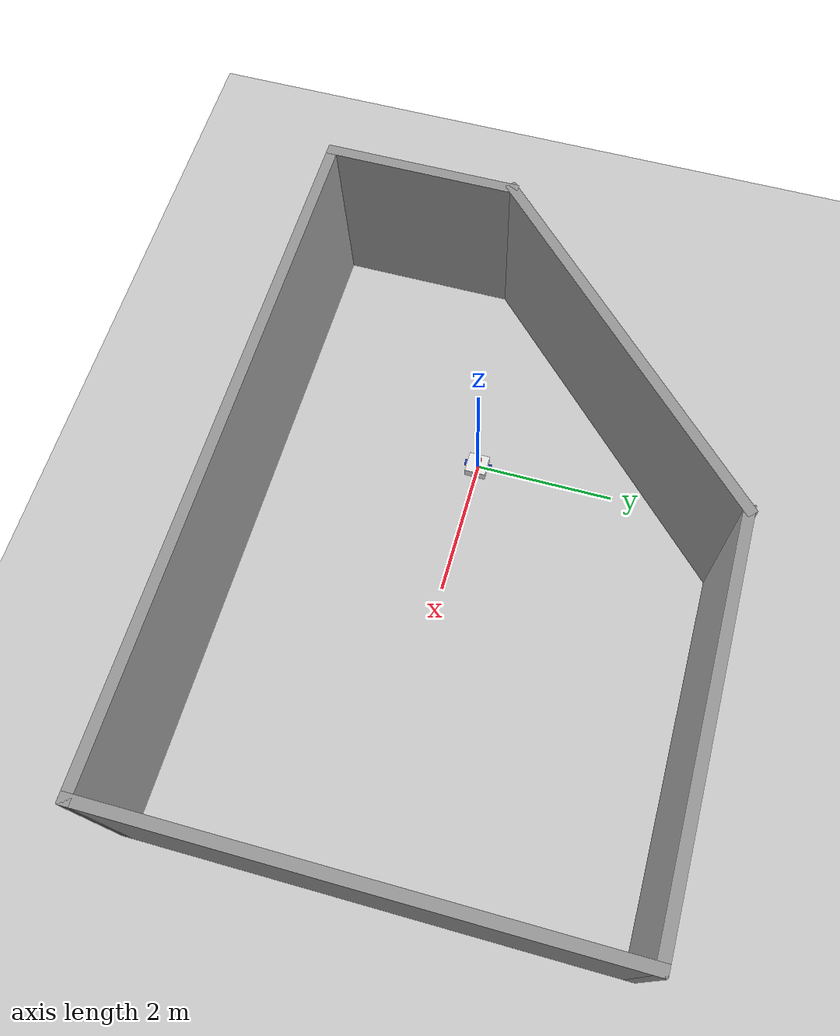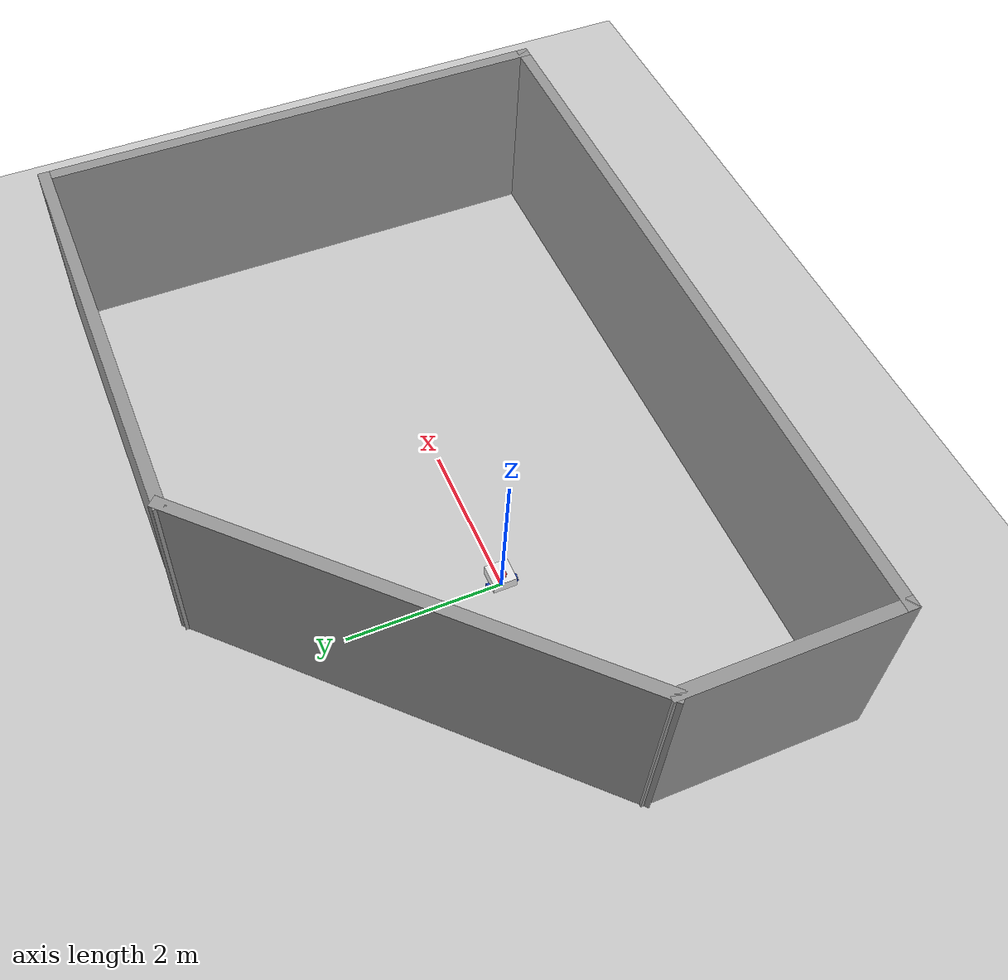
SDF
<sdf version="1.7">
 <world name="default">
  <light name="sun" type="directional">
   <pose>0 0 10 0 -0 0</pose>
   <diffuse>0.8 0.8 0.8 1</diffuse>
   <specular>0.2 0.2 0.2 1</specular>
   <attenuation>
    <range>1000</range>
    <constant>0.9</constant>
    <linear>0.01</linear>
    <quadratic>0.001</quadratic>
   </attenuation>
   <direction>-0.5 0.1 -0.9</direction>
   <spot><inner_angle>0</inner_angle><outer_angle>0</outer_angle><falloff>0</falloff></spot>
  </light>
  <model name="ground_plane">
   <static>1</static>
   <link name="link">
    <collision name="collision">
     <geometry><plane><normal>0 0 1</normal><size>100 100</size></plane></geometry>
     <surface><friction><ode><mu>100</mu><mu2>50</mu2></ode></friction></surface>
    </collision>
    <visual name="visual">
     <cast_shadows>0</cast_shadows>
     <geometry><plane><normal>0 0 1</normal><size>100 100</size></plane></geometry>
     <material>
      <script><uri>file://media/materials/scripts/gazebo.material</uri><name>Gazebo/Grey</name></script>
     </material>
    </visual>
   </link>
  </model>
  <gravity>0 0 -9.8</gravity>
  <magnetic_field>6e-06 2.3e-05 -4.2e-05</magnetic_field>
  <atmosphere type="adiabatic"/>
  <physics type="ode">
   <max_step_size>0.001</max_step_size>
   <real_time_factor>1</real_time_factor>
   <real_time_update_rate>1000</real_time_update_rate>
  </physics>
  <scene><ambient>0.4 0.4 0.4 1</ambient><background>0.7 0.7 0.7 1</background><shadows>1</shadows></scene>
  <audio><device>default</device></audio>
  <spherical_coordinates>
   <surface_model>EARTH_WGS84</surface_model>
   <latitude_deg>0</latitude_deg>
   <longitude_deg>0</longitude_deg>
   <elevation>0</elevation>
   <heading_deg>0</heading_deg>
  </spherical_coordinates>
  <model name="my_bot">
   <link name="base_link">
    <inertial>
     <pose>0.055714 0 0.078571 0 -0 0</pose>
     <mass>0.7</mass>
     <inertia>
      <ixx>0.0064169</ixx>
      <ixy>0</ixy>
      <ixz>0.00118929</ixz>
      <iyy>0.00745405</iyy>
      <iyz>0</iyz>
      <izz>0.00876214</izz>
     </inertia>
    </inertial>
    <collision name="base_link_fixed_joint_lump__chassis_collision">
     <pose>0.05 0 0.075 0 -0 0</pose>
     <geometry><box><size>0.3 0.3 0.15</size></box></geometry>
    </collision>
    <collision name="base_link_fixed_joint_lump__caster_wheel_collision_1">
     <pose>0.14 0 0 0 -0 0</pose>
     <geometry><sphere><radius>0.05</radius></sphere></geometry>
     <surface><friction><ode><mu>0.001</mu><mu2>0.001</mu2></ode></friction></surface>
    </collision>
    <collision name="base_link_fixed_joint_lump__laser_frame_collision_2">
     <pose>0 0 0.175 0 -0 0</pose>
     <geometry><cylinder><length>0.04</length><radius>0.05</radius></cylinder></geometry>
    </collision>
    <visual name="base_link_fixed_joint_lump__chassis_visual">
     <pose>0.05 0 0.075 0 -0 0</pose>
     <geometry><box><size>0.3 0.3 0.15</size></box></geometry>
     <material>
      <script><name>Gazebo/White</name><uri>file://media/materials/scripts/gazebo.material</uri></script>
     </material>
    </visual>
    <visual name="base_link_fixed_joint_lump__camera_link_visual_1">
     <pose>0.205 0 0.08 0 -0 0</pose>
     <geometry><box><size>0.01 0.03 0.03</size></box></geometry>
     <material>
      <script><name>Gazebo/Red</name><uri>file://media/materials/scripts/gazebo.material</uri></script>
     </material>
    </visual>
    <visual name="base_link_fixed_joint_lump__caster_wheel_visual_2">
     <pose>0.14 0 0 0 -0 0</pose>
     <geometry><sphere><radius>0.05</radius></sphere></geometry>
     <material>
      <script><name>Gazebo/Black</name><uri>file://media/materials/scripts/gazebo.material</uri></script>
     </material>
    </visual>
    <visual name="base_link_fixed_joint_lump__laser_frame_visual_3">
     <pose>0 0 0.175 0 -0 0</pose>
     <geometry><cylinder><length>0.04</length><radius>0.05</radius></cylinder></geometry>
     <material>
      <script><name>Gazebo/Red</name><uri>file://media/materials/scripts/gazebo.material</uri></script>
     </material>
    </visual>
    <sensor name="camera" type="camera">
     <visualize>1</visualize>
     <update_rate>10</update_rate>
     <camera>
      <horizontal_fov>1.089</horizontal_fov>
      <image><format>R8G8B8</format><width>640</width><height>480</height></image>
      <clip><near>0.05</near><far>8</far></clip>
     </camera>
     <plugin name="camera_controller" filename="libgazebo_ros_camera.so">
      <frame_name>camera_link_optical</frame_name>
     </plugin>
     <pose>0.205 0 0.08 0 -0 0</pose>
    </sensor>
    <sensor name="laser" type="ray">
     <visualize>1</visualize>
     <update_rate>10</update_rate>
     <ray>
      <scan>
       <horizontal>
        <samples>360</samples>
        <min_angle>-3.14</min_angle>
        <max_angle>3.14</max_angle>
        <resolution>1</resolution>
       </horizontal>
       <vertical><samples>1</samples><min_angle>0</min_angle><max_angle>0</max_angle></vertical>
      </scan>
      <range><min>0.3</min><max>12</max></range>
     </ray>
     <plugin name="laser_controller" filename="libgazebo_ros_ray_sensor.so">
      <ros><argument>~/out:=scan</argument></ros>
      <output_type>sensor_msgs/LaserScan</output_type>
      <frame_name>laser_frame</frame_name>
     </plugin>
     <pose>0 0 0.175 0 -0 0</pose>
    </sensor>
   </link>
   <joint name="left_wheel_joint" type="revolute">
    <pose relative_to="base_link">0 0.175 0 -1.5708 0 0</pose>
    <parent>base_link</parent>
    <child>left_wheel</child>
    <axis>
     <xyz>0 0 1</xyz>
     <limit><lower>-1e+16</lower><upper>1e+16</upper></limit>
     <dynamics><spring_reference>0</spring_reference><spring_stiffness>0</spring_stiffness></dynamics>
    </axis>
   </joint>
   <link name="left_wheel">
    <pose relative_to="left_wheel_joint">0 0 0 0 -0 0</pose>
    <inertial>
     <mass>0.1</mass>
     <inertia>
      <ixx>7.58333e-05</ixx>
      <ixy>0</ixy>
      <ixz>0</ixz>
      <iyy>7.58333e-05</iyy>
      <iyz>0</iyz>
      <izz>0.000125</izz>
     </inertia>
    </inertial>
    <collision name="left_wheel_collision">
     <geometry><cylinder><length>0.04</length><radius>0.05</radius></cylinder></geometry>
    </collision>
    <visual name="left_wheel_visual">
     <geometry><cylinder><length>0.04</length><radius>0.05</radius></cylinder></geometry>
     <material>
      <script><name>Gazebo/Blue</name><uri>file://media/materials/scripts/gazebo.material</uri></script>
     </material>
    </visual>
   </link>
   <joint name="right_wheel_joint" type="revolute">
    <pose relative_to="base_link">0 -0.175 0 1.5708 -0 0</pose>
    <parent>base_link</parent>
    <child>right_wheel</child>
    <axis>
     <xyz>0 0 -1</xyz>
     <limit><lower>-1e+16</lower><upper>1e+16</upper></limit>
     <dynamics><spring_reference>0</spring_reference><spring_stiffness>0</spring_stiffness></dynamics>
    </axis>
   </joint>
   <link name="right_wheel">
    <pose relative_to="right_wheel_joint">0 0 0 0 -0 0</pose>
    <inertial>
     <mass>0.1</mass>
     <inertia>
      <ixx>7.58333e-05</ixx>
      <ixy>0</ixy>
      <ixz>0</ixz>
      <iyy>7.58333e-05</iyy>
      <iyz>0</iyz>
      <izz>0.000125</izz>
     </inertia>
    </inertial>
    <collision name="right_wheel_collision">
     <geometry><cylinder><length>0.04</length><radius>0.05</radius></cylinder></geometry>
    </collision>
    <visual name="right_wheel_visual">
     <geometry><cylinder><length>0.04</length><radius>0.05</radius></cylinder></geometry>
     <material>
      <script><name>Gazebo/Blue</name><uri>file://media/materials/scripts/gazebo.material</uri></script>
     </material>
    </visual>
   </link>
   <static>0</static>
   <plugin name="diff_drive" filename="libgazebo_ros_diff_drive.so">
    <left_joint>left_wheel_joint</left_joint>
    <right_joint>right_wheel_joint</right_joint>
    <wheel_separation>0.35</wheel_separation>
    <wheel_diameter>0.1</wheel_diameter>
    <max_wheel_torque>200</max_wheel_torque>
    <max_wheel_acceleration>10.0</max_wheel_acceleration>
    <odometry_frame>odom</odometry_frame>
    <robot_base_frame>base_link</robot_base_frame>
    <publish_odom>1</publish_odom>
    <publish_odom_tf>1</publish_odom_tf>
    <publish_wheel_tf>1</publish_wheel_tf>
   </plugin>
   <pose>0.004522 3.1e-05 0.05 0 1.2e-05 0.000101</pose>
  </model>
  <model name="test#1">
   <pose>1.58974 0.335357 0 0 -0 0</pose>
   <link name="Wall_10">
    <collision name="Wall_10_Collision">
     <geometry><box><size>5.75 0.15 2.5</size></box></geometry>
     <pose>0 0 1.25 0 -0 0</pose>
    </collision>
    <visual name="Wall_10_Visual">
     <pose>0 0 1.25 0 -0 0</pose>
     <geometry><box><size>5.75 0.15 2.5</size></box></geometry>
     <material>
      <script><uri>file://media/materials/scripts/gazebo.material</uri><name>Gazebo/Grey</name></script>
      <ambient>1 1 1 1</ambient>
     </material>
     <meta><layer>0</layer></meta>
    </visual>
    <pose>-2.65964 1.30474 0 0 -0 -2.35619</pose>
   </link>
   <link name="Wall_2">
    <collision name="Wall_2_Collision">
     <geometry><box><size>2.75 0.15 2.5</size></box></geometry>
     <pose>0 0 1.25 0 -0 0</pose>
    </collision>
    <visual name="Wall_2_Visual">
     <pose>0 0 1.25 0 -0 0</pose>
     <geometry><box><size>2.75 0.15 2.5</size></box></geometry>
     <material>
      <script><uri>file://media/materials/scripts/gazebo.material</uri><name>Gazebo/Grey</name></script>
      <ambient>1 1 1 1</ambient>
     </material>
     <meta><layer>0</layer></meta>
    </visual>
    <pose>-4.62727 -1.97163 0 0 -0 -1.5708</pose>
   </link>
   <link name="Wall_3">
    <collision name="Wall_3_Collision">
     <geometry><box><size>9.44326 0.15 2.5</size></box></geometry>
     <pose>0 0 1.25 0 -0 0</pose>
    </collision>
    <visual name="Wall_3_Visual">
     <pose>0 0 1.25 0 -0 0</pose>
     <geometry><box><size>9.44326 0.15 2.5</size></box></geometry>
     <material>
      <script><uri>file://media/materials/scripts/gazebo.material</uri><name>Gazebo/Grey</name></script>
      <ambient>1 1 1 1</ambient>
     </material>
     <meta><layer>0</layer></meta>
    </visual>
    <pose>0.023678 -3.2935 0 0 -0 -0.004705</pose>
   </link>
   <link name="Wall_4">
    <collision name="Wall_4_Collision">
     <geometry><box><size>6.75 0.15 2.5</size></box></geometry>
     <pose>0 0 1.25 0 -0 0</pose>
    </collision>
    <visual name="Wall_4_Visual">
     <pose>0 0 1.25 0 -0 0</pose>
     <geometry><box><size>6.75 0.15 2.5</size></box></geometry>
     <material>
      <script><uri>file://media/materials/scripts/gazebo.material</uri><name>Gazebo/Grey</name></script>
      <ambient>1 1 1 1</ambient>
     </material>
     <meta><layer>0</layer></meta>
    </visual>
    <pose>4.67026 -0.015357 0 0 -0 1.5708</pose>
   </link>
   <link name="Wall_5">
    <collision name="Wall_5_Collision">
     <geometry><box><size>5.5 0.15 2.5</size></box></geometry>
     <pose>0 0 1.25 0 -0 0</pose>
    </collision>
    <visual name="Wall_5_Visual">
     <pose>0 0 1.25 0 -0 0</pose>
     <geometry><box><size>5.5 0.15 2.5</size></box></geometry>
     <material>
      <script><uri>file://media/materials/scripts/gazebo.material</uri><name>Gazebo/Grey</name></script>
      <ambient>1 1 1 1</ambient>
     </material>
     <meta><layer>0</layer></meta>
    </visual>
    <pose>1.99526 3.28464 0 0 -0 3.14159</pose>
   </link>
   <static>1</static>
  </model>
 </world>
</sdf>
